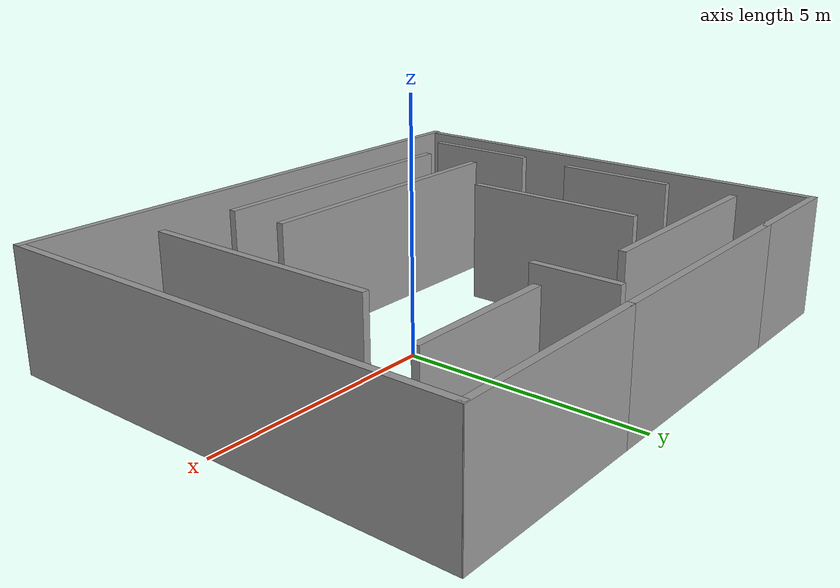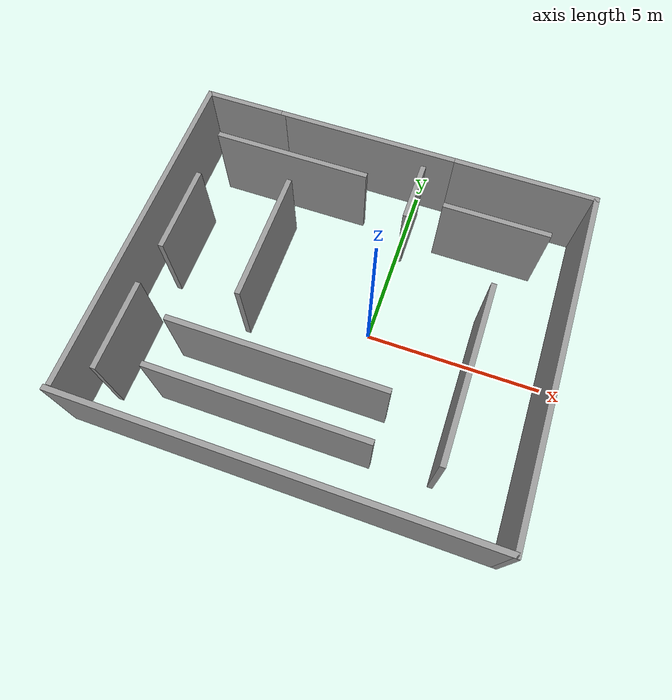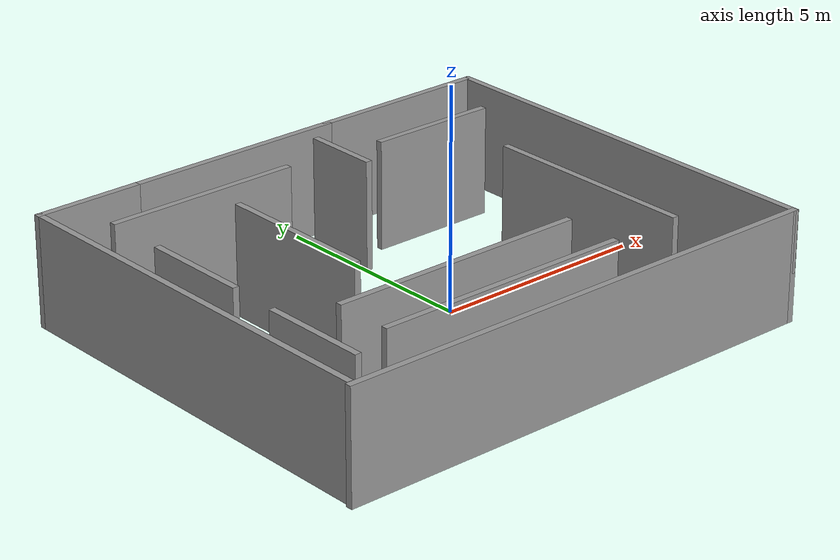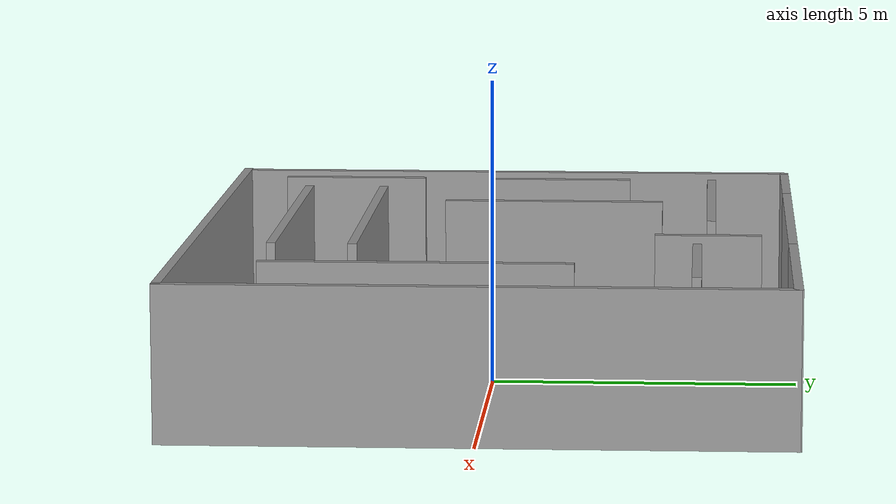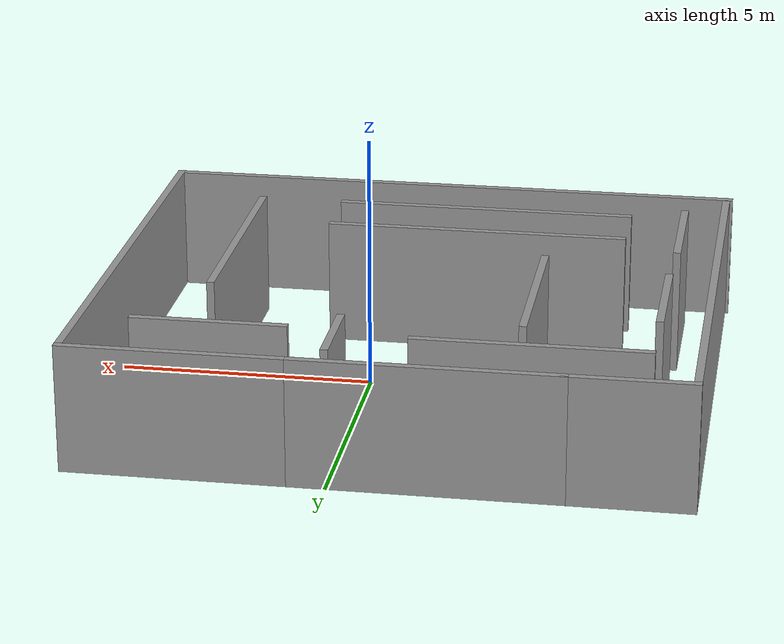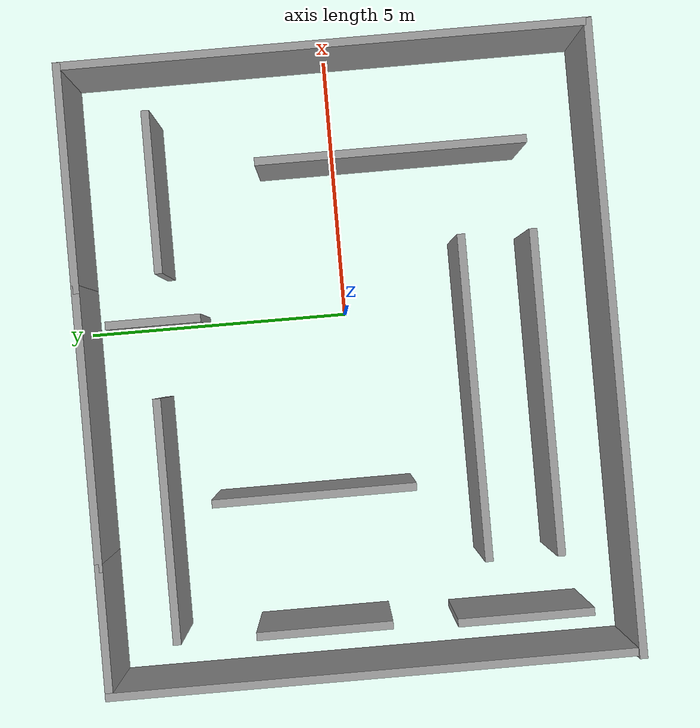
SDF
<?xml version='1.0'?>
<sdf version='1.7'>
  <model name='Labirynt'>
    <pose>-0.90525 0.025493 0 0 -0 0</pose>
    <link name='Wall_10'>
      <collision name='Wall_10_Collision'>
        <geometry>
          <box>
            <size>4.25 0.15 2.5</size>
          </box>
        </geometry>
        <pose>0 0 1.25 0 -0 0</pose>
      </collision>
      <visual name='Wall_10_Visual'>
        <pose>0 0 1.25 0 -0 0</pose>
        <geometry>
          <box>
            <size>4.25 0.15 2.5</size>
          </box>
        </geometry>
        <material>
          <script>
            <uri>file://media/materials/scripts/gazebo.material</uri>
            <name>Gazebo/Grey</name>
          </script>
          <ambient>1 1 1 1</ambient>
        </material>
        <meta>
          <layer>0</layer>
        </meta>
      </visual>
      <pose>3.75225 4.88001 0 0 -0 0</pose>
    </link>
    <link name='Wall_14'>
      <collision name='Wall_14_Collision'>
        <geometry>
          <box>
            <size>9.89003 0.15 2.5</size>
          </box>
        </geometry>
        <pose>0 0 1.25 0 -0 0</pose>
      </collision>
      <visual name='Wall_14_Visual'>
        <pose>0 0 1.25 0 -0 0</pose>
        <geometry>
          <box>
            <size>9.89003 0.15 2.5</size>
          </box>
        </geometry>
        <material>
          <script>
            <uri>file://media/materials/scripts/gazebo.material</uri>
            <name>Gazebo/Grey</name>
          </script>
          <ambient>1 1 1 1</ambient>
        </material>
        <meta>
          <layer>0</layer>
        </meta>
      </visual>
      <pose>5.80575 -0.009993 0 0 -0 -1.5708</pose>
    </link>
    <link name='Wall_15'>
      <collision name='Wall_15_Collision'>
        <geometry>
          <box>
            <size>11.75 0.15 2.5</size>
          </box>
        </geometry>
        <pose>0 0 1.25 0 -0 0</pose>
      </collision>
      <visual name='Wall_15_Visual'>
        <pose>0 0 1.25 0 -0 0</pose>
        <geometry>
          <box>
            <size>11.75 0.15 2.5</size>
          </box>
        </geometry>
        <material>
          <script>
            <uri>file://media/materials/scripts/gazebo.material</uri>
            <name>Gazebo/Grey</name>
          </script>
          <ambient>1 1 1 1</ambient>
        </material>
        <meta>
          <layer>0</layer>
        </meta>
      </visual>
      <pose>-0.00575 -4.87999 0 0 -0 3.14159</pose>
    </link>
    <link name='Wall_22'>
      <collision name='Wall_22_Collision'>
        <geometry>
          <box>
            <size>5.25 0.15 2.5</size>
          </box>
        </geometry>
        <pose>0 0 1.25 0 -0 0</pose>
      </collision>
      <visual name='Wall_22_Visual'>
        <pose>0 0 1.25 0 -0 0</pose>
        <geometry>
          <box>
            <size>5.25 0.15 2.5</size>
          </box>
        </geometry>
        <material>
          <script>
            <uri>file://media/materials/scripts/gazebo.material</uri>
            <name>Gazebo/Grey</name>
          </script>
          <ambient>1 1 1 1</ambient>
        </material>
        <meta>
          <layer>0</layer>
        </meta>
      </visual>
      <pose>-0.84775 4.88001 0 0 -0 3.14159</pose>
    </link>
    <link name='Wall_23'>
      <collision name='Wall_23_Collision'>
        <geometry>
          <box>
            <size>2.5 0.15 2.5</size>
          </box>
        </geometry>
        <pose>0 0 1.25 0 -0 0</pose>
      </collision>
      <visual name='Wall_23_Visual'>
        <pose>0 0 1.25 0 -0 0</pose>
        <geometry>
          <box>
            <size>2.5 0.15 2.5</size>
          </box>
        </geometry>
        <material>
          <script>
            <uri>file://media/materials/scripts/gazebo.material</uri>
            <name>Gazebo/Grey</name>
          </script>
          <ambient>1 1 1 1</ambient>
        </material>
        <meta>
          <layer>0</layer>
        </meta>
      </visual>
      <pose>-4.57275 4.88001 0 0 -0 3.14159</pose>
    </link>
    <link name='Wall_24'>
      <collision name='Wall_24_Collision'>
        <geometry>
          <box>
            <size>9.75 0.15 2.5</size>
          </box>
        </geometry>
        <pose>0 0 1.25 0 -0 0</pose>
      </collision>
      <visual name='Wall_24_Visual'>
        <pose>0 0 1.25 0 -0 0</pose>
        <geometry>
          <box>
            <size>9.75 0.15 2.5</size>
          </box>
        </geometry>
        <material>
          <script>
            <uri>file://media/materials/scripts/gazebo.material</uri>
            <name>Gazebo/Grey</name>
          </script>
          <ambient>1 1 1 1</ambient>
        </material>
        <meta>
          <layer>0</layer>
        </meta>
      </visual>
      <pose>-5.74775 0.080007 0 0 -0 -1.5708</pose>
    </link>
    <link name='Wall_44'>
      <collision name='Wall_44_Collision'>
        <geometry>
          <box>
            <size>2.5 0.15 2.5</size>
          </box>
        </geometry>
        <pose>0 0 1.25 0 -0 0</pose>
      </collision>
      <visual name='Wall_44_Visual'>
        <pose>0 0 1.25 0 -0 0</pose>
        <geometry>
          <box>
            <size>2.5 0.15 2.5</size>
          </box>
        </geometry>
        <material>
          <script>
            <uri>file://media/materials/scripts/gazebo.material</uri>
            <name>Gazebo/Grey</name>
          </script>
          <ambient>1 1 1 1</ambient>
        </material>
        <meta>
          <layer>0</layer>
        </meta>
      </visual>
      <pose>-4.94768 -2.81365 0 0 -0 1.5708</pose>
    </link>
    <link name='Wall_51'>
      <collision name='Wall_51_Collision'>
        <geometry>
          <box>
            <size>6 0.15 2.5</size>
          </box>
        </geometry>
        <pose>0 0 1.25 0 -0 0</pose>
      </collision>
      <visual name='Wall_51_Visual'>
        <pose>0 0 1.25 0 -0 0</pose>
        <geometry>
          <box>
            <size>6 0.15 2.5</size>
          </box>
        </geometry>
        <material>
          <script>
            <uri>file://media/materials/scripts/gazebo.material</uri>
            <name>Gazebo/Grey</name>
          </script>
          <ambient>1 1 1 1</ambient>
        </material>
        <meta>
          <layer>0</layer>
        </meta>
      </visual>
      <pose>-0.895679 -3.55165 0 0 -0 0</pose>
    </link>
    <link name='Wall_56'>
      <collision name='Wall_56_Collision'>
        <geometry>
          <box>
            <size>6 0.15 2.5</size>
          </box>
        </geometry>
        <pose>0 0 1.25 0 -0 0</pose>
      </collision>
      <visual name='Wall_56_Visual'>
        <pose>0 0 1.25 0 -0 0</pose>
        <geometry>
          <box>
            <size>6 0.15 2.5</size>
          </box>
        </geometry>
        <material>
          <script>
            <uri>file://media/materials/scripts/gazebo.material</uri>
            <name>Gazebo/Grey</name>
          </script>
          <ambient>1 1 1 1</ambient>
        </material>
        <meta>
          <layer>0</layer>
        </meta>
      </visual>
      <pose>-0.884179 -2.22915 0 0 -0 0</pose>
    </link>
    <link name='Wall_58'>
      <collision name='Wall_58_Collision'>
        <geometry>
          <box>
            <size>5 0.15 2.5</size>
          </box>
        </geometry>
        <pose>0 0 1.25 0 -0 0</pose>
      </collision>
      <visual name='Wall_58_Visual'>
        <pose>0 0 1.25 0 -0 0</pose>
        <geometry>
          <box>
            <size>5 0.15 2.5</size>
          </box>
        </geometry>
        <material>
          <script>
            <uri>file://media/materials/scripts/gazebo.material</uri>
            <name>Gazebo/Grey</name>
          </script>
          <ambient>1 1 1 1</ambient>
        </material>
        <meta>
          <layer>0</layer>
        </meta>
      </visual>
      <pose>3.75782 -1.08065 0 0 -0 1.5708</pose>
    </link>
    <link name='Wall_62'>
      <collision name='Wall_62_Collision'>
        <geometry>
          <box>
            <size>2.5 0.15 2.5</size>
          </box>
        </geometry>
        <pose>0 0 1.25 0 -0 0</pose>
      </collision>
      <visual name='Wall_62_Visual'>
        <pose>0 0 1.25 0 -0 0</pose>
        <geometry>
          <box>
            <size>2.5 0.15 2.5</size>
          </box>
        </geometry>
        <material>
          <script>
            <uri>file://media/materials/scripts/gazebo.material</uri>
            <name>Gazebo/Grey</name>
          </script>
          <ambient>1 1 1 1</ambient>
        </material>
        <meta>
          <layer>0</layer>
        </meta>
      </visual>
      <pose>-4.87868 0.862349 0 0 -0 -1.5708</pose>
    </link>
    <link name='Wall_64'>
      <collision name='Wall_64_Collision'>
        <geometry>
          <box>
            <size>4.5 0.15 2.5</size>
          </box>
        </geometry>
        <pose>0 0 1.25 0 -0 0</pose>
      </collision>
      <visual name='Wall_64_Visual'>
        <pose>0 0 1.25 0 -0 0</pose>
        <geometry>
          <box>
            <size>4.5 0.15 2.5</size>
          </box>
        </geometry>
        <material>
          <script>
            <uri>file://media/materials/scripts/gazebo.material</uri>
            <name>Gazebo/Grey</name>
          </script>
          <ambient>1 1 1 1</ambient>
        </material>
        <meta>
          <layer>0</layer>
        </meta>
      </visual>
      <pose>-2.65768 3.56685 0 0 -0 0</pose>
    </link>
    <link name='Wall_66'>
      <collision name='Wall_66_Collision'>
        <geometry>
          <box>
            <size>1.75 0.15 2.5</size>
          </box>
        </geometry>
        <pose>0 0 1.25 0 -0 0</pose>
      </collision>
      <visual name='Wall_66_Visual'>
        <pose>0 0 1.25 0 -0 0</pose>
        <geometry>
          <box>
            <size>1.75 0.15 2.5</size>
          </box>
        </geometry>
        <material>
          <script>
            <uri>file://media/materials/scripts/gazebo.material</uri>
            <name>Gazebo/Grey</name>
          </script>
          <ambient>1 1 1 1</ambient>
        </material>
        <meta>
          <layer>0</layer>
        </meta>
      </visual>
      <pose>0.997821 3.51435 0 0 -0 -1.5708</pose>
    </link>
    <link name='Wall_68'>
      <collision name='Wall_68_Collision'>
        <geometry>
          <box>
            <size>3 0.15 2.5</size>
          </box>
        </geometry>
        <pose>0 0 1.25 0 -0 0</pose>
      </collision>
      <visual name='Wall_68_Visual'>
        <pose>0 0 1.25 0 -0 0</pose>
        <geometry>
          <box>
            <size>3 0.15 2.5</size>
          </box>
        </geometry>
        <material>
          <script>
            <uri>file://media/materials/scripts/gazebo.material</uri>
            <name>Gazebo/Grey</name>
          </script>
          <ambient>1 1 1 1</ambient>
        </material>
        <meta>
          <layer>0</layer>
        </meta>
      </visual>
      <pose>3.36582 3.33685 0 0 -0 0</pose>
    </link>
    <link name='Wall_70'>
      <collision name='Wall_70_Collision'>
        <geometry>
          <box>
            <size>3.75 0.15 2.5</size>
          </box>
        </geometry>
        <pose>0 0 1.25 0 -0 0</pose>
      </collision>
      <visual name='Wall_70_Visual'>
        <pose>0 0 1.25 0 -0 0</pose>
        <geometry>
          <box>
            <size>3.75 0.15 2.5</size>
          </box>
        </geometry>
        <material>
          <script>
            <uri>file://media/materials/scripts/gazebo.material</uri>
            <name>Gazebo/Grey</name>
          </script>
          <ambient>1 1 1 1</ambient>
        </material>
        <meta>
          <layer>0</layer>
        </meta>
      </visual>
      <pose>-2.40618 0.846849 0 0 -0 -1.5708</pose>
    </link>
    <static>1</static>
  </model>
</sdf>
